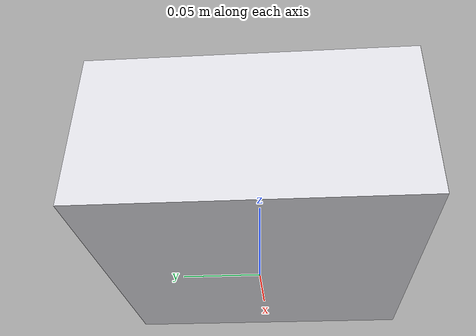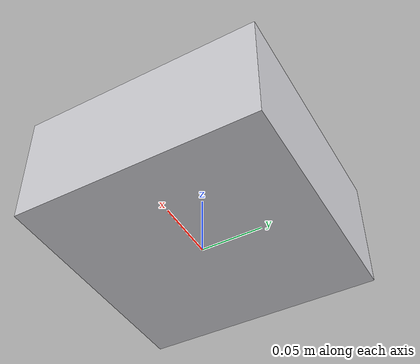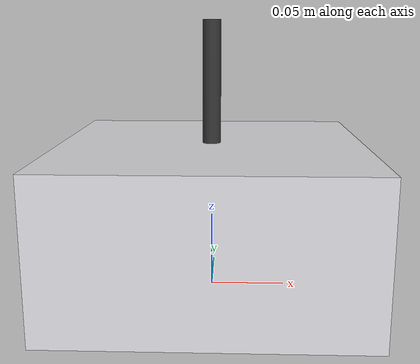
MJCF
<?xml version="1.0" encoding="utf-8"?>
<mujoco model="colony_pick_robot">
  <compiler angle="radian" autolimits="true"/>
  <default>
    <default class="body"><geom contype="1" conaffinity="1"/></default>
  </default>
  <worldbody>
    <body name="base">
      <geom type="box" size="0.1 0.1 0.05" pos="0 0 0.05" rgba="0.85 0.85 0.87 1" class="body"/>
      <geom type="box" size="0.03 0.005000000000000001 0.0125" pos="-0.05 -0.09000000000000001 0.07500000000000001" rgba="0.9 0.7 0.1 1" class="body"/>
      <body name="pipette_arm" pos="0 0 0.13">
        <joint name="pipette_arm_joint" type="slide" axis="0 0 1" range="-0.04 0" damping="1.0" frictionloss="0.3"/>
  <geom type="cylinder" size="0.006 0.05" pos="0 0 0" rgba="0.2 0.2 0.2 1" class="body"/>
      </body>
    </body>
  </worldbody>
</mujoco>
